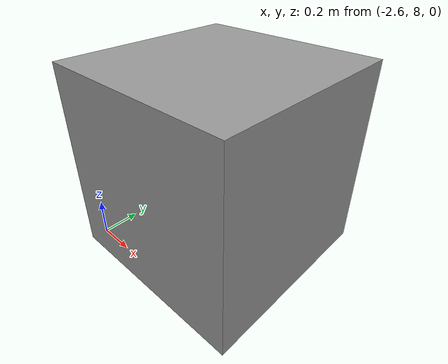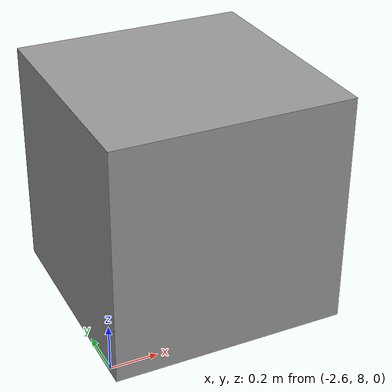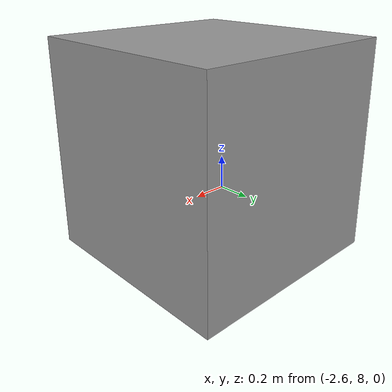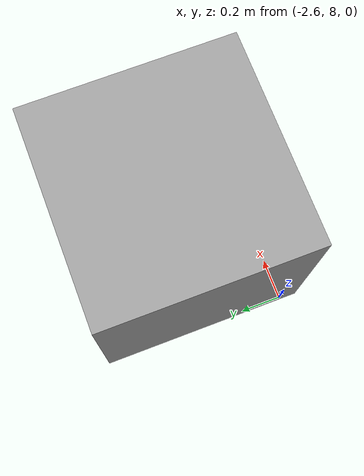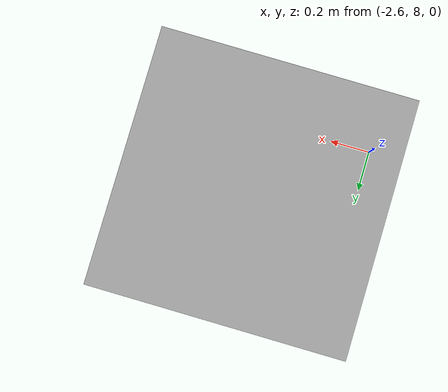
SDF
<sdf version="1.7">
 <model name="faps_model_features">
  <link name="box_1">
   <inertial>
    <mass>1</mass>
    <inertia>
     <ixx>0.166667</ixx>
     <ixy>0</ixy>
     <ixz>0</ixz>
     <iyy>0.166667</iyy>
     <iyz>0</iyz>
     <izz>0.166667</izz>
    </inertia>
   </inertial>
   <pose>-2.10854 8.4159 0.5 0 -0 0</pose>
   <visual name="visual">
    <geometry><box><size>1 1 1</size></box></geometry>
    <material>
     <lighting>1</lighting>
     <script><uri>file://media/materials/scripts/gazebo.material</uri><name>Gazebo/Grey</name></script>
     <shader type="pixel"/>
    </material>
   </visual>
   <collision name="collision">
    <geometry><box><size>1 1 1</size></box></geometry>
    <surface>
     <friction>
      <ode><mu>1</mu><mu2>1</mu2><fdir1>0 0 0</fdir1><slip1>0</slip1><slip2>0</slip2></ode>
      <torsional>
       <coefficient>1</coefficient>
       <patch_radius>0</patch_radius>
       <surface_radius>0</surface_radius>
       <use_patch_radius>1</use_patch_radius>
       <ode><slip>0</slip></ode>
      </torsional>
     </friction>
     <bounce><restitution_coefficient>0</restitution_coefficient><threshold>1e+06</threshold></bounce>
     <contact>
      <collide_without_contact>0</collide_without_contact>
      <collide_without_contact_bitmask>1</collide_without_contact_bitmask>
      <collide_bitmask>1</collide_bitmask>
      <ode>
       <soft_cfm>0</soft_cfm>
       <soft_erp>0.2</soft_erp>
       <kp>1e+13</kp>
       <kd>1</kd>
       <max_vel>0.01</max_vel>
       <min_depth>0</min_depth>
      </ode>
      <bullet>
       <split_impulse>1</split_impulse>
       <split_impulse_penetration_threshold>-0.01</split_impulse_penetration_threshold>
       <soft_cfm>0</soft_cfm>
       <soft_erp>0.2</soft_erp>
       <kp>1e+13</kp>
       <kd>1</kd>
      </bullet>
     </contact>
    </surface>
   </collision>
  </link>
  <static>1</static>
 </model>
</sdf>
